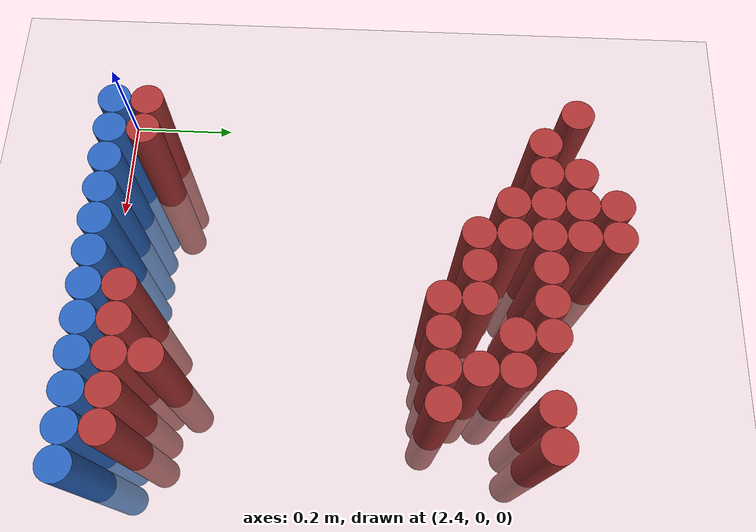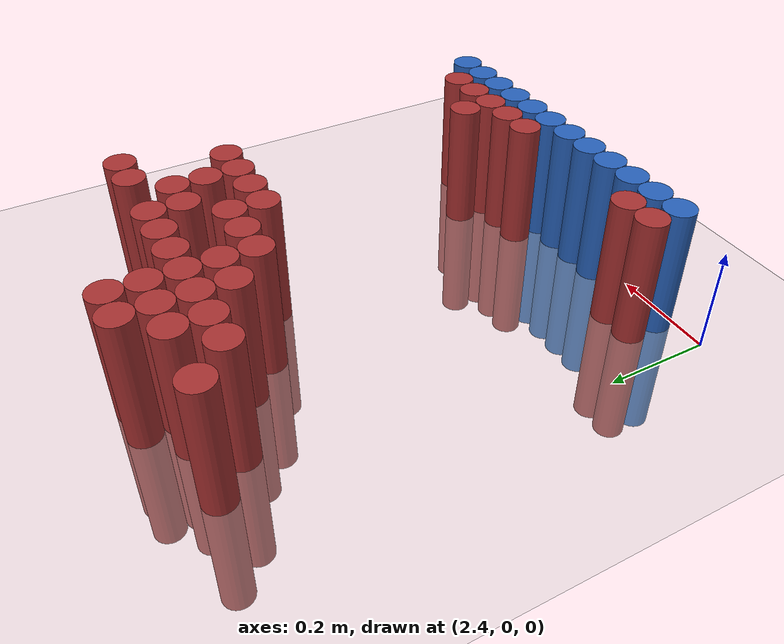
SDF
<sdf version="1.6">
 <world name="default">
  <model name="ground_plane">
   <static>1</static>
   <link name="link">
    <collision name="collision">
     <geometry><plane><normal>0 0 1</normal><size>100 100</size></plane></geometry>
     <surface><friction><ode><mu>100</mu><mu2>50</mu2></ode></friction></surface>
    </collision>
    <visual name="visual">
     <cast_shadows>0</cast_shadows>
     <geometry><plane><normal>0 0 1</normal><size>100 100</size></plane></geometry>
     <material>
      <script><uri>file://media/materials/scripts/gazebo.material</uri><name>Gazebo/Grey</name></script>
     </material>
    </visual>
   </link>
  </model>
  <model name="unit_cylinder_213">
   <static>1</static>
   <pose>2.670000 0.930000 0.000000 0.000000 0.000000 0.000000</pose>
   <link name="link">
    <inertial>
     <mass>1</mass>
     <inertia><ixx>0.145833</ixx><ixy>0</ixy><ixz>0</ixz><iyy>0.145833</iyy><iyz>0</iyz><izz>0.125</izz></inertia>
    </inertial>
    <collision name="collision">
     <geometry><cylinder><radius>0.030000</radius><length>0.5</length></cylinder></geometry>
    </collision>
    <visual name="visual">
     <geometry><cylinder><radius>0.030000</radius><length>0.5</length></cylinder></geometry>
     <material>
      <ambient>0.648000 0.192000 0.192000 1</ambient>
      <diffuse>0.648000 0.192000 0.192000 1</diffuse>
     </material>
     <material>
      <script><name>Gazebo/Grey</name><uri>file://media/materials/scripts/gazebo.material</uri></script>
     </material>
    </visual>
   </link>
  </model>
  <model name="unit_cylinder_214">
   <static>1</static>
   <pose>2.730000 0.930000 0.000000 0.000000 0.000000 0.000000</pose>
   <link name="link">
    <inertial>
     <mass>1</mass>
     <inertia><ixx>0.145833</ixx><ixy>0</ixy><ixz>0</ixz><iyy>0.145833</iyy><iyz>0</iyz><izz>0.125</izz></inertia>
    </inertial>
    <collision name="collision">
     <geometry><cylinder><radius>0.030000</radius><length>0.5</length></cylinder></geometry>
    </collision>
    <visual name="visual">
     <geometry><cylinder><radius>0.030000</radius><length>0.5</length></cylinder></geometry>
     <material>
      <ambient>0.648000 0.192000 0.192000 1</ambient>
      <diffuse>0.648000 0.192000 0.192000 1</diffuse>
     </material>
     <material>
      <script><name>Gazebo/Grey</name><uri>file://media/materials/scripts/gazebo.material</uri></script>
     </material>
    </visual>
   </link>
  </model>
  <model name="unit_cylinder_221">
   <static>1</static>
   <pose>2.490000 0.870000 0.000000 0.000000 0.000000 0.000000</pose>
   <link name="link">
    <inertial>
     <mass>1</mass>
     <inertia><ixx>0.145833</ixx><ixy>0</ixy><ixz>0</ixz><iyy>0.145833</iyy><iyz>0</iyz><izz>0.125</izz></inertia>
    </inertial>
    <collision name="collision">
     <geometry><cylinder><radius>0.030000</radius><length>0.5</length></cylinder></geometry>
    </collision>
    <visual name="visual">
     <geometry><cylinder><radius>0.030000</radius><length>0.5</length></cylinder></geometry>
     <material>
      <ambient>0.648000 0.192000 0.192000 1</ambient>
      <diffuse>0.648000 0.192000 0.192000 1</diffuse>
     </material>
     <material>
      <script><name>Gazebo/Grey</name><uri>file://media/materials/scripts/gazebo.material</uri></script>
     </material>
    </visual>
   </link>
  </model>
  <model name="unit_cylinder_222">
   <static>1</static>
   <pose>2.610000 0.870000 0.000000 0.000000 0.000000 0.000000</pose>
   <link name="link">
    <inertial>
     <mass>1</mass>
     <inertia><ixx>0.145833</ixx><ixy>0</ixy><ixz>0</ixz><iyy>0.145833</iyy><iyz>0</iyz><izz>0.125</izz></inertia>
    </inertial>
    <collision name="collision">
     <geometry><cylinder><radius>0.030000</radius><length>0.5</length></cylinder></geometry>
    </collision>
    <visual name="visual">
     <geometry><cylinder><radius>0.030000</radius><length>0.5</length></cylinder></geometry>
     <material>
      <ambient>0.648000 0.192000 0.192000 1</ambient>
      <diffuse>0.648000 0.192000 0.192000 1</diffuse>
     </material>
     <material>
      <script><name>Gazebo/Grey</name><uri>file://media/materials/scripts/gazebo.material</uri></script>
     </material>
    </visual>
   </link>
  </model>
  <model name="unit_cylinder_223">
   <static>1</static>
   <pose>2.670000 0.870000 0.000000 0.000000 0.000000 0.000000</pose>
   <link name="link">
    <inertial>
     <mass>1</mass>
     <inertia><ixx>0.145833</ixx><ixy>0</ixy><ixz>0</ixz><iyy>0.145833</iyy><iyz>0</iyz><izz>0.125</izz></inertia>
    </inertial>
    <collision name="collision">
     <geometry><cylinder><radius>0.030000</radius><length>0.5</length></cylinder></geometry>
    </collision>
    <visual name="visual">
     <geometry><cylinder><radius>0.030000</radius><length>0.5</length></cylinder></geometry>
     <material>
      <ambient>0.648000 0.192000 0.192000 1</ambient>
      <diffuse>0.648000 0.192000 0.192000 1</diffuse>
     </material>
     <material>
      <script><name>Gazebo/Grey</name><uri>file://media/materials/scripts/gazebo.material</uri></script>
     </material>
    </visual>
   </link>
  </model>
  <model name="unit_cylinder_224">
   <static>1</static>
   <pose>2.730000 0.870000 0.000000 0.000000 0.000000 0.000000</pose>
   <link name="link">
    <inertial>
     <mass>1</mass>
     <inertia><ixx>0.145833</ixx><ixy>0</ixy><ixz>0</ixz><iyy>0.145833</iyy><iyz>0</iyz><izz>0.125</izz></inertia>
    </inertial>
    <collision name="collision">
     <geometry><cylinder><radius>0.030000</radius><length>0.5</length></cylinder></geometry>
    </collision>
    <visual name="visual">
     <geometry><cylinder><radius>0.030000</radius><length>0.5</length></cylinder></geometry>
     <material>
      <ambient>0.648000 0.192000 0.192000 1</ambient>
      <diffuse>0.648000 0.192000 0.192000 1</diffuse>
     </material>
     <material>
      <script><name>Gazebo/Grey</name><uri>file://media/materials/scripts/gazebo.material</uri></script>
     </material>
    </visual>
   </link>
  </model>
  <model name="unit_cylinder_231">
   <static>1</static>
   <pose>2.550000 0.810000 0.000000 0.000000 0.000000 0.000000</pose>
   <link name="link">
    <inertial>
     <mass>1</mass>
     <inertia><ixx>0.145833</ixx><ixy>0</ixy><ixz>0</ixz><iyy>0.145833</iyy><iyz>0</iyz><izz>0.125</izz></inertia>
    </inertial>
    <collision name="collision">
     <geometry><cylinder><radius>0.030000</radius><length>0.5</length></cylinder></geometry>
    </collision>
    <visual name="visual">
     <geometry><cylinder><radius>0.030000</radius><length>0.5</length></cylinder></geometry>
     <material>
      <ambient>0.648000 0.192000 0.192000 1</ambient>
      <diffuse>0.648000 0.192000 0.192000 1</diffuse>
     </material>
     <material>
      <script><name>Gazebo/Grey</name><uri>file://media/materials/scripts/gazebo.material</uri></script>
     </material>
    </visual>
   </link>
  </model>
  <model name="unit_cylinder_232">
   <static>1</static>
   <pose>2.610000 0.810000 0.000000 0.000000 0.000000 0.000000</pose>
   <link name="link">
    <inertial>
     <mass>1</mass>
     <inertia><ixx>0.145833</ixx><ixy>0</ixy><ixz>0</ixz><iyy>0.145833</iyy><iyz>0</iyz><izz>0.125</izz></inertia>
    </inertial>
    <collision name="collision">
     <geometry><cylinder><radius>0.030000</radius><length>0.5</length></cylinder></geometry>
    </collision>
    <visual name="visual">
     <geometry><cylinder><radius>0.030000</radius><length>0.5</length></cylinder></geometry>
     <material>
      <ambient>0.648000 0.192000 0.192000 1</ambient>
      <diffuse>0.648000 0.192000 0.192000 1</diffuse>
     </material>
     <material>
      <script><name>Gazebo/Grey</name><uri>file://media/materials/scripts/gazebo.material</uri></script>
     </material>
    </visual>
   </link>
  </model>
  <model name="unit_cylinder_233">
   <static>1</static>
   <pose>2.670000 0.810000 0.000000 0.000000 0.000000 0.000000</pose>
   <link name="link">
    <inertial>
     <mass>1</mass>
     <inertia><ixx>0.145833</ixx><ixy>0</ixy><ixz>0</ixz><iyy>0.145833</iyy><iyz>0</iyz><izz>0.125</izz></inertia>
    </inertial>
    <collision name="collision">
     <geometry><cylinder><radius>0.030000</radius><length>0.5</length></cylinder></geometry>
    </collision>
    <visual name="visual">
     <geometry><cylinder><radius>0.030000</radius><length>0.5</length></cylinder></geometry>
     <material>
      <ambient>0.648000 0.192000 0.192000 1</ambient>
      <diffuse>0.648000 0.192000 0.192000 1</diffuse>
     </material>
     <material>
      <script><name>Gazebo/Grey</name><uri>file://media/materials/scripts/gazebo.material</uri></script>
     </material>
    </visual>
   </link>
  </model>
  <model name="unit_cylinder_234">
   <static>1</static>
   <pose>2.730000 0.810000 0.000000 0.000000 0.000000 0.000000</pose>
   <link name="link">
    <inertial>
     <mass>1</mass>
     <inertia><ixx>0.145833</ixx><ixy>0</ixy><ixz>0</ixz><iyy>0.145833</iyy><iyz>0</iyz><izz>0.125</izz></inertia>
    </inertial>
    <collision name="collision">
     <geometry><cylinder><radius>0.030000</radius><length>0.5</length></cylinder></geometry>
    </collision>
    <visual name="visual">
     <geometry><cylinder><radius>0.030000</radius><length>0.5</length></cylinder></geometry>
     <material>
      <ambient>0.648000 0.192000 0.192000 1</ambient>
      <diffuse>0.648000 0.192000 0.192000 1</diffuse>
     </material>
     <material>
      <script><name>Gazebo/Grey</name><uri>file://media/materials/scripts/gazebo.material</uri></script>
     </material>
    </visual>
   </link>
  </model>
  <model name="unit_cylinder_235">
   <static>1</static>
   <pose>2.790000 0.810000 0.000000 0.000000 0.000000 0.000000</pose>
   <link name="link">
    <inertial>
     <mass>1</mass>
     <inertia><ixx>0.145833</ixx><ixy>0</ixy><ixz>0</ixz><iyy>0.145833</iyy><iyz>0</iyz><izz>0.125</izz></inertia>
    </inertial>
    <collision name="collision">
     <geometry><cylinder><radius>0.030000</radius><length>0.5</length></cylinder></geometry>
    </collision>
    <visual name="visual">
     <geometry><cylinder><radius>0.030000</radius><length>0.5</length></cylinder></geometry>
     <material>
      <ambient>0.648000 0.192000 0.192000 1</ambient>
      <diffuse>0.648000 0.192000 0.192000 1</diffuse>
     </material>
     <material>
      <script><name>Gazebo/Grey</name><uri>file://media/materials/scripts/gazebo.material</uri></script>
     </material>
    </visual>
   </link>
  </model>
  <model name="unit_cylinder_236">
   <static>1</static>
   <pose>2.850000 0.810000 0.000000 0.000000 0.000000 0.000000</pose>
   <link name="link">
    <inertial>
     <mass>1</mass>
     <inertia><ixx>0.145833</ixx><ixy>0</ixy><ixz>0</ixz><iyy>0.145833</iyy><iyz>0</iyz><izz>0.125</izz></inertia>
    </inertial>
    <collision name="collision">
     <geometry><cylinder><radius>0.030000</radius><length>0.5</length></cylinder></geometry>
    </collision>
    <visual name="visual">
     <geometry><cylinder><radius>0.030000</radius><length>0.5</length></cylinder></geometry>
     <material>
      <ambient>0.648000 0.192000 0.192000 1</ambient>
      <diffuse>0.648000 0.192000 0.192000 1</diffuse>
     </material>
     <material>
      <script><name>Gazebo/Grey</name><uri>file://media/materials/scripts/gazebo.material</uri></script>
     </material>
    </visual>
   </link>
  </model>
  <model name="unit_cylinder_237">
   <static>1</static>
   <pose>2.910000 0.810000 0.000000 0.000000 0.000000 0.000000</pose>
   <link name="link">
    <inertial>
     <mass>1</mass>
     <inertia><ixx>0.145833</ixx><ixy>0</ixy><ixz>0</ixz><iyy>0.145833</iyy><iyz>0</iyz><izz>0.125</izz></inertia>
    </inertial>
    <collision name="collision">
     <geometry><cylinder><radius>0.030000</radius><length>0.5</length></cylinder></geometry>
    </collision>
    <visual name="visual">
     <geometry><cylinder><radius>0.030000</radius><length>0.5</length></cylinder></geometry>
     <material>
      <ambient>0.648000 0.192000 0.192000 1</ambient>
      <diffuse>0.648000 0.192000 0.192000 1</diffuse>
     </material>
     <material>
      <script><name>Gazebo/Grey</name><uri>file://media/materials/scripts/gazebo.material</uri></script>
     </material>
    </visual>
   </link>
  </model>
  <model name="unit_cylinder_238">
   <static>1</static>
   <pose>3.030000 0.810000 0.000000 0.000000 0.000000 0.000000</pose>
   <link name="link">
    <inertial>
     <mass>1</mass>
     <inertia><ixx>0.145833</ixx><ixy>0</ixy><ixz>0</ixz><iyy>0.145833</iyy><iyz>0</iyz><izz>0.125</izz></inertia>
    </inertial>
    <collision name="collision">
     <geometry><cylinder><radius>0.030000</radius><length>0.5</length></cylinder></geometry>
    </collision>
    <visual name="visual">
     <geometry><cylinder><radius>0.030000</radius><length>0.5</length></cylinder></geometry>
     <material>
      <ambient>0.648000 0.192000 0.192000 1</ambient>
      <diffuse>0.648000 0.192000 0.192000 1</diffuse>
     </material>
     <material>
      <script><name>Gazebo/Grey</name><uri>file://media/materials/scripts/gazebo.material</uri></script>
     </material>
    </visual>
   </link>
  </model>
  <model name="unit_cylinder_239">
   <static>1</static>
   <pose>3.090000 0.810000 0.000000 0.000000 0.000000 0.000000</pose>
   <link name="link">
    <inertial>
     <mass>1</mass>
     <inertia><ixx>0.145833</ixx><ixy>0</ixy><ixz>0</ixz><iyy>0.145833</iyy><iyz>0</iyz><izz>0.125</izz></inertia>
    </inertial>
    <collision name="collision">
     <geometry><cylinder><radius>0.030000</radius><length>0.5</length></cylinder></geometry>
    </collision>
    <visual name="visual">
     <geometry><cylinder><radius>0.030000</radius><length>0.5</length></cylinder></geometry>
     <material>
      <ambient>0.648000 0.192000 0.192000 1</ambient>
      <diffuse>0.648000 0.192000 0.192000 1</diffuse>
     </material>
     <material>
      <script><name>Gazebo/Grey</name><uri>file://media/materials/scripts/gazebo.material</uri></script>
     </material>
    </visual>
   </link>
  </model>
  <model name="unit_cylinder_244">
   <static>1</static>
   <pose>2.670000 0.750000 0.000000 0.000000 0.000000 0.000000</pose>
   <link name="link">
    <inertial>
     <mass>1</mass>
     <inertia><ixx>0.145833</ixx><ixy>0</ixy><ixz>0</ixz><iyy>0.145833</iyy><iyz>0</iyz><izz>0.125</izz></inertia>
    </inertial>
    <collision name="collision">
     <geometry><cylinder><radius>0.030000</radius><length>0.5</length></cylinder></geometry>
    </collision>
    <visual name="visual">
     <geometry><cylinder><radius>0.030000</radius><length>0.5</length></cylinder></geometry>
     <material>
      <ambient>0.648000 0.192000 0.192000 1</ambient>
      <diffuse>0.648000 0.192000 0.192000 1</diffuse>
     </material>
     <material>
      <script><name>Gazebo/Grey</name><uri>file://media/materials/scripts/gazebo.material</uri></script>
     </material>
    </visual>
   </link>
  </model>
  <model name="unit_cylinder_245">
   <static>1</static>
   <pose>2.730000 0.750000 0.000000 0.000000 0.000000 0.000000</pose>
   <link name="link">
    <inertial>
     <mass>1</mass>
     <inertia><ixx>0.145833</ixx><ixy>0</ixy><ixz>0</ixz><iyy>0.145833</iyy><iyz>0</iyz><izz>0.125</izz></inertia>
    </inertial>
    <collision name="collision">
     <geometry><cylinder><radius>0.030000</radius><length>0.5</length></cylinder></geometry>
    </collision>
    <visual name="visual">
     <geometry><cylinder><radius>0.030000</radius><length>0.5</length></cylinder></geometry>
     <material>
      <ambient>0.648000 0.192000 0.192000 1</ambient>
      <diffuse>0.648000 0.192000 0.192000 1</diffuse>
     </material>
     <material>
      <script><name>Gazebo/Grey</name><uri>file://media/materials/scripts/gazebo.material</uri></script>
     </material>
    </visual>
   </link>
  </model>
  <model name="unit_cylinder_246">
   <static>1</static>
   <pose>2.910000 0.750000 0.000000 0.000000 0.000000 0.000000</pose>
   <link name="link">
    <inertial>
     <mass>1</mass>
     <inertia><ixx>0.145833</ixx><ixy>0</ixy><ixz>0</ixz><iyy>0.145833</iyy><iyz>0</iyz><izz>0.125</izz></inertia>
    </inertial>
    <collision name="collision">
     <geometry><cylinder><radius>0.030000</radius><length>0.5</length></cylinder></geometry>
    </collision>
    <visual name="visual">
     <geometry><cylinder><radius>0.030000</radius><length>0.5</length></cylinder></geometry>
     <material>
      <ambient>0.648000 0.192000 0.192000 1</ambient>
      <diffuse>0.648000 0.192000 0.192000 1</diffuse>
     </material>
     <material>
      <script><name>Gazebo/Grey</name><uri>file://media/materials/scripts/gazebo.material</uri></script>
     </material>
    </visual>
   </link>
  </model>
  <model name="unit_cylinder_247">
   <static>1</static>
   <pose>2.970000 0.750000 0.000000 0.000000 0.000000 0.000000</pose>
   <link name="link">
    <inertial>
     <mass>1</mass>
     <inertia><ixx>0.145833</ixx><ixy>0</ixy><ixz>0</ixz><iyy>0.145833</iyy><iyz>0</iyz><izz>0.125</izz></inertia>
    </inertial>
    <collision name="collision">
     <geometry><cylinder><radius>0.030000</radius><length>0.5</length></cylinder></geometry>
    </collision>
    <visual name="visual">
     <geometry><cylinder><radius>0.030000</radius><length>0.5</length></cylinder></geometry>
     <material>
      <ambient>0.648000 0.192000 0.192000 1</ambient>
      <diffuse>0.648000 0.192000 0.192000 1</diffuse>
     </material>
     <material>
      <script><name>Gazebo/Grey</name><uri>file://media/materials/scripts/gazebo.material</uri></script>
     </material>
    </visual>
   </link>
  </model>
  <model name="unit_cylinder_252">
   <static>1</static>
   <pose>2.730000 0.690000 0.000000 0.000000 0.000000 0.000000</pose>
   <link name="link">
    <inertial>
     <mass>1</mass>
     <inertia><ixx>0.145833</ixx><ixy>0</ixy><ixz>0</ixz><iyy>0.145833</iyy><iyz>0</iyz><izz>0.125</izz></inertia>
    </inertial>
    <collision name="collision">
     <geometry><cylinder><radius>0.030000</radius><length>0.5</length></cylinder></geometry>
    </collision>
    <visual name="visual">
     <geometry><cylinder><radius>0.030000</radius><length>0.5</length></cylinder></geometry>
     <material>
      <ambient>0.648000 0.192000 0.192000 1</ambient>
      <diffuse>0.648000 0.192000 0.192000 1</diffuse>
     </material>
     <material>
      <script><name>Gazebo/Grey</name><uri>file://media/materials/scripts/gazebo.material</uri></script>
     </material>
    </visual>
   </link>
  </model>
  <model name="unit_cylinder_253">
   <static>1</static>
   <pose>2.790000 0.690000 0.000000 0.000000 0.000000 0.000000</pose>
   <link name="link">
    <inertial>
     <mass>1</mass>
     <inertia><ixx>0.145833</ixx><ixy>0</ixy><ixz>0</ixz><iyy>0.145833</iyy><iyz>0</iyz><izz>0.125</izz></inertia>
    </inertial>
    <collision name="collision">
     <geometry><cylinder><radius>0.030000</radius><length>0.5</length></cylinder></geometry>
    </collision>
    <visual name="visual">
     <geometry><cylinder><radius>0.030000</radius><length>0.5</length></cylinder></geometry>
     <material>
      <ambient>0.648000 0.192000 0.192000 1</ambient>
      <diffuse>0.648000 0.192000 0.192000 1</diffuse>
     </material>
     <material>
      <script><name>Gazebo/Grey</name><uri>file://media/materials/scripts/gazebo.material</uri></script>
     </material>
    </visual>
   </link>
  </model>
  <model name="unit_cylinder_254">
   <static>1</static>
   <pose>2.850000 0.690000 0.000000 0.000000 0.000000 0.000000</pose>
   <link name="link">
    <inertial>
     <mass>1</mass>
     <inertia><ixx>0.145833</ixx><ixy>0</ixy><ixz>0</ixz><iyy>0.145833</iyy><iyz>0</iyz><izz>0.125</izz></inertia>
    </inertial>
    <collision name="collision">
     <geometry><cylinder><radius>0.030000</radius><length>0.5</length></cylinder></geometry>
    </collision>
    <visual name="visual">
     <geometry><cylinder><radius>0.030000</radius><length>0.5</length></cylinder></geometry>
     <material>
      <ambient>0.648000 0.192000 0.192000 1</ambient>
      <diffuse>0.648000 0.192000 0.192000 1</diffuse>
     </material>
     <material>
      <script><name>Gazebo/Grey</name><uri>file://media/materials/scripts/gazebo.material</uri></script>
     </material>
    </visual>
   </link>
  </model>
  <model name="unit_cylinder_255">
   <static>1</static>
   <pose>2.970000 0.690000 0.000000 0.000000 0.000000 0.000000</pose>
   <link name="link">
    <inertial>
     <mass>1</mass>
     <inertia><ixx>0.145833</ixx><ixy>0</ixy><ixz>0</ixz><iyy>0.145833</iyy><iyz>0</iyz><izz>0.125</izz></inertia>
    </inertial>
    <collision name="collision">
     <geometry><cylinder><radius>0.030000</radius><length>0.5</length></cylinder></geometry>
    </collision>
    <visual name="visual">
     <geometry><cylinder><radius>0.030000</radius><length>0.5</length></cylinder></geometry>
     <material>
      <ambient>0.648000 0.192000 0.192000 1</ambient>
      <diffuse>0.648000 0.192000 0.192000 1</diffuse>
     </material>
     <material>
      <script><name>Gazebo/Grey</name><uri>file://media/materials/scripts/gazebo.material</uri></script>
     </material>
    </visual>
   </link>
  </model>
  <model name="unit_cylinder_261">
   <static>1</static>
   <pose>2.850000 0.630000 0.000000 0.000000 0.000000 0.000000</pose>
   <link name="link">
    <inertial>
     <mass>1</mass>
     <inertia><ixx>0.145833</ixx><ixy>0</ixy><ixz>0</ixz><iyy>0.145833</iyy><iyz>0</iyz><izz>0.125</izz></inertia>
    </inertial>
    <collision name="collision">
     <geometry><cylinder><radius>0.030000</radius><length>0.5</length></cylinder></geometry>
    </collision>
    <visual name="visual">
     <geometry><cylinder><radius>0.030000</radius><length>0.5</length></cylinder></geometry>
     <material>
      <ambient>0.648000 0.192000 0.192000 1</ambient>
      <diffuse>0.648000 0.192000 0.192000 1</diffuse>
     </material>
     <material>
      <script><name>Gazebo/Grey</name><uri>file://media/materials/scripts/gazebo.material</uri></script>
     </material>
    </visual>
   </link>
  </model>
  <model name="unit_cylinder_262">
   <static>1</static>
   <pose>2.910000 0.630000 0.000000 0.000000 0.000000 0.000000</pose>
   <link name="link">
    <inertial>
     <mass>1</mass>
     <inertia><ixx>0.145833</ixx><ixy>0</ixy><ixz>0</ixz><iyy>0.145833</iyy><iyz>0</iyz><izz>0.125</izz></inertia>
    </inertial>
    <collision name="collision">
     <geometry><cylinder><radius>0.030000</radius><length>0.5</length></cylinder></geometry>
    </collision>
    <visual name="visual">
     <geometry><cylinder><radius>0.030000</radius><length>0.5</length></cylinder></geometry>
     <material>
      <ambient>0.648000 0.192000 0.192000 1</ambient>
      <diffuse>0.648000 0.192000 0.192000 1</diffuse>
     </material>
     <material>
      <script><name>Gazebo/Grey</name><uri>file://media/materials/scripts/gazebo.material</uri></script>
     </material>
    </visual>
   </link>
  </model>
  <model name="unit_cylinder_263">
   <static>1</static>
   <pose>2.970000 0.630000 0.000000 0.000000 0.000000 0.000000</pose>
   <link name="link">
    <inertial>
     <mass>1</mass>
     <inertia><ixx>0.145833</ixx><ixy>0</ixy><ixz>0</ixz><iyy>0.145833</iyy><iyz>0</iyz><izz>0.125</izz></inertia>
    </inertial>
    <collision name="collision">
     <geometry><cylinder><radius>0.030000</radius><length>0.5</length></cylinder></geometry>
    </collision>
    <visual name="visual">
     <geometry><cylinder><radius>0.030000</radius><length>0.5</length></cylinder></geometry>
     <material>
      <ambient>0.648000 0.192000 0.192000 1</ambient>
      <diffuse>0.648000 0.192000 0.192000 1</diffuse>
     </material>
     <material>
      <script><name>Gazebo/Grey</name><uri>file://media/materials/scripts/gazebo.material</uri></script>
     </material>
    </visual>
   </link>
  </model>
  <model name="unit_cylinder_264">
   <static>1</static>
   <pose>3.030000 0.630000 0.000000 0.000000 0.000000 0.000000</pose>
   <link name="link">
    <inertial>
     <mass>1</mass>
     <inertia><ixx>0.145833</ixx><ixy>0</ixy><ixz>0</ixz><iyy>0.145833</iyy><iyz>0</iyz><izz>0.125</izz></inertia>
    </inertial>
    <collision name="collision">
     <geometry><cylinder><radius>0.030000</radius><length>0.5</length></cylinder></geometry>
    </collision>
    <visual name="visual">
     <geometry><cylinder><radius>0.030000</radius><length>0.5</length></cylinder></geometry>
     <material>
      <ambient>0.648000 0.192000 0.192000 1</ambient>
      <diffuse>0.648000 0.192000 0.192000 1</diffuse>
     </material>
     <material>
      <script><name>Gazebo/Grey</name><uri>file://media/materials/scripts/gazebo.material</uri></script>
     </material>
    </visual>
   </link>
  </model>
  <model name="unit_cylinder_276">
   <static>1</static>
   <pose>2.970000 0.150000 0.000000 0.000000 0.000000 0.000000</pose>
   <link name="link">
    <inertial>
     <mass>1</mass>
     <inertia><ixx>0.145833</ixx><ixy>0</ixy><ixz>0</ixz><iyy>0.145833</iyy><iyz>0</iyz><izz>0.125</izz></inertia>
    </inertial>
    <collision name="collision">
     <geometry><cylinder><radius>0.030000</radius><length>0.5</length></cylinder></geometry>
    </collision>
    <visual name="visual">
     <geometry><cylinder><radius>0.030000</radius><length>0.5</length></cylinder></geometry>
     <material>
      <ambient>0.648000 0.192000 0.192000 1</ambient>
      <diffuse>0.648000 0.192000 0.192000 1</diffuse>
     </material>
     <material>
      <script><name>Gazebo/Grey</name><uri>file://media/materials/scripts/gazebo.material</uri></script>
     </material>
    </visual>
   </link>
  </model>
  <model name="unit_cylinder_288">
   <static>1</static>
   <pose>2.490000 0.090000 0.000000 0.000000 0.000000 0.000000</pose>
   <link name="link">
    <inertial>
     <mass>1</mass>
     <inertia><ixx>0.145833</ixx><ixy>0</ixy><ixz>0</ixz><iyy>0.145833</iyy><iyz>0</iyz><izz>0.125</izz></inertia>
    </inertial>
    <collision name="collision">
     <geometry><cylinder><radius>0.030000</radius><length>0.5</length></cylinder></geometry>
    </collision>
    <visual name="visual">
     <geometry><cylinder><radius>0.030000</radius><length>0.5</length></cylinder></geometry>
     <material>
      <ambient>0.648000 0.192000 0.192000 1</ambient>
      <diffuse>0.648000 0.192000 0.192000 1</diffuse>
     </material>
     <material>
      <script><name>Gazebo/Grey</name><uri>file://media/materials/scripts/gazebo.material</uri></script>
     </material>
    </visual>
   </link>
  </model>
  <model name="unit_cylinder_289">
   <static>1</static>
   <pose>2.550000 0.090000 0.000000 0.000000 0.000000 0.000000</pose>
   <link name="link">
    <inertial>
     <mass>1</mass>
     <inertia><ixx>0.145833</ixx><ixy>0</ixy><ixz>0</ixz><iyy>0.145833</iyy><iyz>0</iyz><izz>0.125</izz></inertia>
    </inertial>
    <collision name="collision">
     <geometry><cylinder><radius>0.030000</radius><length>0.5</length></cylinder></geometry>
    </collision>
    <visual name="visual">
     <geometry><cylinder><radius>0.030000</radius><length>0.5</length></cylinder></geometry>
     <material>
      <ambient>0.648000 0.192000 0.192000 1</ambient>
      <diffuse>0.648000 0.192000 0.192000 1</diffuse>
     </material>
     <material>
      <script><name>Gazebo/Grey</name><uri>file://media/materials/scripts/gazebo.material</uri></script>
     </material>
    </visual>
   </link>
  </model>
  <model name="unit_cylinder_290">
   <static>1</static>
   <pose>2.850000 0.090000 0.000000 0.000000 0.000000 0.000000</pose>
   <link name="link">
    <inertial>
     <mass>1</mass>
     <inertia><ixx>0.145833</ixx><ixy>0</ixy><ixz>0</ixz><iyy>0.145833</iyy><iyz>0</iyz><izz>0.125</izz></inertia>
    </inertial>
    <collision name="collision">
     <geometry><cylinder><radius>0.030000</radius><length>0.5</length></cylinder></geometry>
    </collision>
    <visual name="visual">
     <geometry><cylinder><radius>0.030000</radius><length>0.5</length></cylinder></geometry>
     <material>
      <ambient>0.648000 0.192000 0.192000 1</ambient>
      <diffuse>0.648000 0.192000 0.192000 1</diffuse>
     </material>
     <material>
      <script><name>Gazebo/Grey</name><uri>file://media/materials/scripts/gazebo.material</uri></script>
     </material>
    </visual>
   </link>
  </model>
  <model name="unit_cylinder_291">
   <static>1</static>
   <pose>2.910000 0.090000 0.000000 0.000000 0.000000 0.000000</pose>
   <link name="link">
    <inertial>
     <mass>1</mass>
     <inertia><ixx>0.145833</ixx><ixy>0</ixy><ixz>0</ixz><iyy>0.145833</iyy><iyz>0</iyz><izz>0.125</izz></inertia>
    </inertial>
    <collision name="collision">
     <geometry><cylinder><radius>0.030000</radius><length>0.5</length></cylinder></geometry>
    </collision>
    <visual name="visual">
     <geometry><cylinder><radius>0.030000</radius><length>0.5</length></cylinder></geometry>
     <material>
      <ambient>0.648000 0.192000 0.192000 1</ambient>
      <diffuse>0.648000 0.192000 0.192000 1</diffuse>
     </material>
     <material>
      <script><name>Gazebo/Grey</name><uri>file://media/materials/scripts/gazebo.material</uri></script>
     </material>
    </visual>
   </link>
  </model>
  <model name="unit_cylinder_292">
   <static>1</static>
   <pose>2.970000 0.090000 0.000000 0.000000 0.000000 0.000000</pose>
   <link name="link">
    <inertial>
     <mass>1</mass>
     <inertia><ixx>0.145833</ixx><ixy>0</ixy><ixz>0</ixz><iyy>0.145833</iyy><iyz>0</iyz><izz>0.125</izz></inertia>
    </inertial>
    <collision name="collision">
     <geometry><cylinder><radius>0.030000</radius><length>0.5</length></cylinder></geometry>
    </collision>
    <visual name="visual">
     <geometry><cylinder><radius>0.030000</radius><length>0.5</length></cylinder></geometry>
     <material>
      <ambient>0.648000 0.192000 0.192000 1</ambient>
      <diffuse>0.648000 0.192000 0.192000 1</diffuse>
     </material>
     <material>
      <script><name>Gazebo/Grey</name><uri>file://media/materials/scripts/gazebo.material</uri></script>
     </material>
    </visual>
   </link>
  </model>
  <model name="unit_cylinder_293">
   <static>1</static>
   <pose>3.030000 0.090000 0.000000 0.000000 0.000000 0.000000</pose>
   <link name="link">
    <inertial>
     <mass>1</mass>
     <inertia><ixx>0.145833</ixx><ixy>0</ixy><ixz>0</ixz><iyy>0.145833</iyy><iyz>0</iyz><izz>0.125</izz></inertia>
    </inertial>
    <collision name="collision">
     <geometry><cylinder><radius>0.030000</radius><length>0.5</length></cylinder></geometry>
    </collision>
    <visual name="visual">
     <geometry><cylinder><radius>0.030000</radius><length>0.5</length></cylinder></geometry>
     <material>
      <ambient>0.648000 0.192000 0.192000 1</ambient>
      <diffuse>0.648000 0.192000 0.192000 1</diffuse>
     </material>
     <material>
      <script><name>Gazebo/Grey</name><uri>file://media/materials/scripts/gazebo.material</uri></script>
     </material>
    </visual>
   </link>
  </model>
  <model name="unit_cylinder_294">
   <static>1</static>
   <pose>3.090000 0.090000 0.000000 0.000000 0.000000 0.000000</pose>
   <link name="link">
    <inertial>
     <mass>1</mass>
     <inertia><ixx>0.145833</ixx><ixy>0</ixy><ixz>0</ixz><iyy>0.145833</iyy><iyz>0</iyz><izz>0.125</izz></inertia>
    </inertial>
    <collision name="collision">
     <geometry><cylinder><radius>0.030000</radius><length>0.5</length></cylinder></geometry>
    </collision>
    <visual name="visual">
     <geometry><cylinder><radius>0.030000</radius><length>0.5</length></cylinder></geometry>
     <material>
      <ambient>0.648000 0.192000 0.192000 1</ambient>
      <diffuse>0.648000 0.192000 0.192000 1</diffuse>
     </material>
     <material>
      <script><name>Gazebo/Grey</name><uri>file://media/materials/scripts/gazebo.material</uri></script>
     </material>
    </visual>
   </link>
  </model>
  <model name="unit_cylinder_311">
   <static>1</static>
   <pose>2.490000 0.030000 0.000000 0.000000 0.000000 0.000000</pose>
   <link name="link">
    <inertial>
     <mass>1</mass>
     <inertia><ixx>0.145833</ixx><ixy>0</ixy><ixz>0</ixz><iyy>0.145833</iyy><iyz>0</iyz><izz>0.125</izz></inertia>
    </inertial>
    <collision name="collision">
     <geometry><cylinder><radius>0.030000</radius><length>0.5</length></cylinder></geometry>
    </collision>
    <visual name="visual">
     <geometry><cylinder><radius>0.030000</radius><length>0.5</length></cylinder></geometry>
     <material>
      <ambient>0.152000 0.379000 0.720000 1</ambient>
      <diffuse>0.152000 0.379000 0.720000 1</diffuse>
     </material>
     <material>
      <script><name>Gazebo/Grey</name><uri>file://media/materials/scripts/gazebo.material</uri></script>
     </material>
    </visual>
   </link>
  </model>
  <model name="unit_cylinder_312">
   <static>1</static>
   <pose>2.550000 0.030000 0.000000 0.000000 0.000000 0.000000</pose>
   <link name="link">
    <inertial>
     <mass>1</mass>
     <inertia><ixx>0.145833</ixx><ixy>0</ixy><ixz>0</ixz><iyy>0.145833</iyy><iyz>0</iyz><izz>0.125</izz></inertia>
    </inertial>
    <collision name="collision">
     <geometry><cylinder><radius>0.030000</radius><length>0.5</length></cylinder></geometry>
    </collision>
    <visual name="visual">
     <geometry><cylinder><radius>0.030000</radius><length>0.5</length></cylinder></geometry>
     <material>
      <ambient>0.152000 0.379000 0.720000 1</ambient>
      <diffuse>0.152000 0.379000 0.720000 1</diffuse>
     </material>
     <material>
      <script><name>Gazebo/Grey</name><uri>file://media/materials/scripts/gazebo.material</uri></script>
     </material>
    </visual>
   </link>
  </model>
  <model name="unit_cylinder_313">
   <static>1</static>
   <pose>2.610000 0.030000 0.000000 0.000000 0.000000 0.000000</pose>
   <link name="link">
    <inertial>
     <mass>1</mass>
     <inertia><ixx>0.145833</ixx><ixy>0</ixy><ixz>0</ixz><iyy>0.145833</iyy><iyz>0</iyz><izz>0.125</izz></inertia>
    </inertial>
    <collision name="collision">
     <geometry><cylinder><radius>0.030000</radius><length>0.5</length></cylinder></geometry>
    </collision>
    <visual name="visual">
     <geometry><cylinder><radius>0.030000</radius><length>0.5</length></cylinder></geometry>
     <material>
      <ambient>0.152000 0.379000 0.720000 1</ambient>
      <diffuse>0.152000 0.379000 0.720000 1</diffuse>
     </material>
     <material>
      <script><name>Gazebo/Grey</name><uri>file://media/materials/scripts/gazebo.material</uri></script>
     </material>
    </visual>
   </link>
  </model>
  <model name="unit_cylinder_314">
   <static>1</static>
   <pose>2.670000 0.030000 0.000000 0.000000 0.000000 0.000000</pose>
   <link name="link">
    <inertial>
     <mass>1</mass>
     <inertia><ixx>0.145833</ixx><ixy>0</ixy><ixz>0</ixz><iyy>0.145833</iyy><iyz>0</iyz><izz>0.125</izz></inertia>
    </inertial>
    <collision name="collision">
     <geometry><cylinder><radius>0.030000</radius><length>0.5</length></cylinder></geometry>
    </collision>
    <visual name="visual">
     <geometry><cylinder><radius>0.030000</radius><length>0.5</length></cylinder></geometry>
     <material>
      <ambient>0.152000 0.379000 0.720000 1</ambient>
      <diffuse>0.152000 0.379000 0.720000 1</diffuse>
     </material>
     <material>
      <script><name>Gazebo/Grey</name><uri>file://media/materials/scripts/gazebo.material</uri></script>
     </material>
    </visual>
   </link>
  </model>
  <model name="unit_cylinder_315">
   <static>1</static>
   <pose>2.730000 0.030000 0.000000 0.000000 0.000000 0.000000</pose>
   <link name="link">
    <inertial>
     <mass>1</mass>
     <inertia><ixx>0.145833</ixx><ixy>0</ixy><ixz>0</ixz><iyy>0.145833</iyy><iyz>0</iyz><izz>0.125</izz></inertia>
    </inertial>
    <collision name="collision">
     <geometry><cylinder><radius>0.030000</radius><length>0.5</length></cylinder></geometry>
    </collision>
    <visual name="visual">
     <geometry><cylinder><radius>0.030000</radius><length>0.5</length></cylinder></geometry>
     <material>
      <ambient>0.152000 0.379000 0.720000 1</ambient>
      <diffuse>0.152000 0.379000 0.720000 1</diffuse>
     </material>
     <material>
      <script><name>Gazebo/Grey</name><uri>file://media/materials/scripts/gazebo.material</uri></script>
     </material>
    </visual>
   </link>
  </model>
  <model name="unit_cylinder_316">
   <static>1</static>
   <pose>2.790000 0.030000 0.000000 0.000000 0.000000 0.000000</pose>
   <link name="link">
    <inertial>
     <mass>1</mass>
     <inertia><ixx>0.145833</ixx><ixy>0</ixy><ixz>0</ixz><iyy>0.145833</iyy><iyz>0</iyz><izz>0.125</izz></inertia>
    </inertial>
    <collision name="collision">
     <geometry><cylinder><radius>0.030000</radius><length>0.5</length></cylinder></geometry>
    </collision>
    <visual name="visual">
     <geometry><cylinder><radius>0.030000</radius><length>0.5</length></cylinder></geometry>
     <material>
      <ambient>0.152000 0.379000 0.720000 1</ambient>
      <diffuse>0.152000 0.379000 0.720000 1</diffuse>
     </material>
     <material>
      <script><name>Gazebo/Grey</name><uri>file://media/materials/scripts/gazebo.material</uri></script>
     </material>
    </visual>
   </link>
  </model>
  <model name="unit_cylinder_317">
   <static>1</static>
   <pose>2.850000 0.030000 0.000000 0.000000 0.000000 0.000000</pose>
   <link name="link">
    <inertial>
     <mass>1</mass>
     <inertia><ixx>0.145833</ixx><ixy>0</ixy><ixz>0</ixz><iyy>0.145833</iyy><iyz>0</iyz><izz>0.125</izz></inertia>
    </inertial>
    <collision name="collision">
     <geometry><cylinder><radius>0.030000</radius><length>0.5</length></cylinder></geometry>
    </collision>
    <visual name="visual">
     <geometry><cylinder><radius>0.030000</radius><length>0.5</length></cylinder></geometry>
     <material>
      <ambient>0.152000 0.379000 0.720000 1</ambient>
      <diffuse>0.152000 0.379000 0.720000 1</diffuse>
     </material>
     <material>
      <script><name>Gazebo/Grey</name><uri>file://media/materials/scripts/gazebo.material</uri></script>
     </material>
    </visual>
   </link>
  </model>
  <model name="unit_cylinder_318">
   <static>1</static>
   <pose>2.910000 0.030000 0.000000 0.000000 0.000000 0.000000</pose>
   <link name="link">
    <inertial>
     <mass>1</mass>
     <inertia><ixx>0.145833</ixx><ixy>0</ixy><ixz>0</ixz><iyy>0.145833</iyy><iyz>0</iyz><izz>0.125</izz></inertia>
    </inertial>
    <collision name="collision">
     <geometry><cylinder><radius>0.030000</radius><length>0.5</length></cylinder></geometry>
    </collision>
    <visual name="visual">
     <geometry><cylinder><radius>0.030000</radius><length>0.5</length></cylinder></geometry>
     <material>
      <ambient>0.152000 0.379000 0.720000 1</ambient>
      <diffuse>0.152000 0.379000 0.720000 1</diffuse>
     </material>
     <material>
      <script><name>Gazebo/Grey</name><uri>file://media/materials/scripts/gazebo.material</uri></script>
     </material>
    </visual>
   </link>
  </model>
  <model name="unit_cylinder_319">
   <static>1</static>
   <pose>2.970000 0.030000 0.000000 0.000000 0.000000 0.000000</pose>
   <link name="link">
    <inertial>
     <mass>1</mass>
     <inertia><ixx>0.145833</ixx><ixy>0</ixy><ixz>0</ixz><iyy>0.145833</iyy><iyz>0</iyz><izz>0.125</izz></inertia>
    </inertial>
    <collision name="collision">
     <geometry><cylinder><radius>0.030000</radius><length>0.5</length></cylinder></geometry>
    </collision>
    <visual name="visual">
     <geometry><cylinder><radius>0.030000</radius><length>0.5</length></cylinder></geometry>
     <material>
      <ambient>0.152000 0.379000 0.720000 1</ambient>
      <diffuse>0.152000 0.379000 0.720000 1</diffuse>
     </material>
     <material>
      <script><name>Gazebo/Grey</name><uri>file://media/materials/scripts/gazebo.material</uri></script>
     </material>
    </visual>
   </link>
  </model>
  <model name="unit_cylinder_320">
   <static>1</static>
   <pose>3.030000 0.030000 0.000000 0.000000 0.000000 0.000000</pose>
   <link name="link">
    <inertial>
     <mass>1</mass>
     <inertia><ixx>0.145833</ixx><ixy>0</ixy><ixz>0</ixz><iyy>0.145833</iyy><iyz>0</iyz><izz>0.125</izz></inertia>
    </inertial>
    <collision name="collision">
     <geometry><cylinder><radius>0.030000</radius><length>0.5</length></cylinder></geometry>
    </collision>
    <visual name="visual">
     <geometry><cylinder><radius>0.030000</radius><length>0.5</length></cylinder></geometry>
     <material>
      <ambient>0.152000 0.379000 0.720000 1</ambient>
      <diffuse>0.152000 0.379000 0.720000 1</diffuse>
     </material>
     <material>
      <script><name>Gazebo/Grey</name><uri>file://media/materials/scripts/gazebo.material</uri></script>
     </material>
    </visual>
   </link>
  </model>
  <model name="unit_cylinder_321">
   <static>1</static>
   <pose>3.090000 0.030000 0.000000 0.000000 0.000000 0.000000</pose>
   <link name="link">
    <inertial>
     <mass>1</mass>
     <inertia><ixx>0.145833</ixx><ixy>0</ixy><ixz>0</ixz><iyy>0.145833</iyy><iyz>0</iyz><izz>0.125</izz></inertia>
    </inertial>
    <collision name="collision">
     <geometry><cylinder><radius>0.030000</radius><length>0.5</length></cylinder></geometry>
    </collision>
    <visual name="visual">
     <geometry><cylinder><radius>0.030000</radius><length>0.5</length></cylinder></geometry>
     <material>
      <ambient>0.152000 0.379000 0.720000 1</ambient>
      <diffuse>0.152000 0.379000 0.720000 1</diffuse>
     </material>
     <material>
      <script><name>Gazebo/Grey</name><uri>file://media/materials/scripts/gazebo.material</uri></script>
     </material>
    </visual>
   </link>
  </model>
  <model name="unit_cylinder_322">
   <static>1</static>
   <pose>3.150000 0.030000 0.000000 0.000000 0.000000 0.000000</pose>
   <link name="link">
    <inertial>
     <mass>1</mass>
     <inertia><ixx>0.145833</ixx><ixy>0</ixy><ixz>0</ixz><iyy>0.145833</iyy><iyz>0</iyz><izz>0.125</izz></inertia>
    </inertial>
    <collision name="collision">
     <geometry><cylinder><radius>0.030000</radius><length>0.5</length></cylinder></geometry>
    </collision>
    <visual name="visual">
     <geometry><cylinder><radius>0.030000</radius><length>0.5</length></cylinder></geometry>
     <material>
      <ambient>0.152000 0.379000 0.720000 1</ambient>
      <diffuse>0.152000 0.379000 0.720000 1</diffuse>
     </material>
     <material>
      <script><name>Gazebo/Grey</name><uri>file://media/materials/scripts/gazebo.material</uri></script>
     </material>
    </visual>
   </link>
  </model>
 </world>
</sdf>
